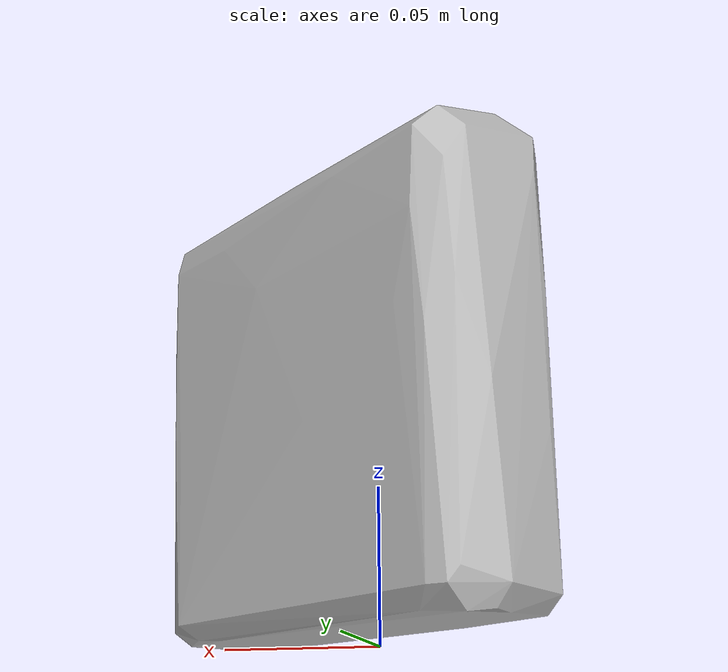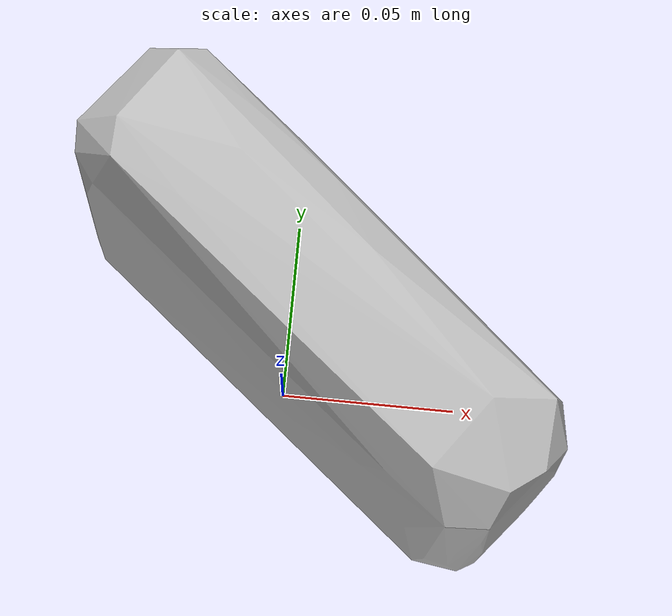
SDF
<?xml version='1.0'?>
<sdf version="1.4">
  <model name="chewy_dipps_chocolate_chip">
    <static>false</static>
    <link name="link">
      <inertial>
        <pose>0.0102431282093078 0.013296985506505432 0.07390101370462605 1.6118597756685422 -0.015415424312318066 -2.25556672559486</pose>
        <mass>0.20252997395123727</mass>
        <inertia>
          <ixx>0.0003597066609136523</ixx>
          <ixy>-1.2559994163981523e-21</ixy>
          <ixz>-8.71199564577435e-21</ixz>
          <iyy>0.00021333043867808362</iyy>
          <iyz>-4.284474137002229e-22</iyz>
          <izz>0.00018561127811246496</izz>
        </inertia>
      </inertial>
      <collision name="collision">
        <geometry>
          <mesh>
            <!-- Use a downsampled mesh for collisions -->
            <uri>model:///chewy_dipps_chocolate_chip/chewy_dipps_chocolate_chip_250_collision.obj</uri>
	        </mesh>
        </geometry>
        <surface>
      </surface>
      </collision>
      <visual name="visual">
        <geometry>
          <mesh>
            <uri>model:///chewy_dipps_chocolate_chip/optimized_tsdf_texture_mapped_mesh.obj</uri>
	        </mesh>
        </geometry>
        <material>
          <script>
            <uri>model:///chewy_dipps_chocolate_chip/chewy_dipps_chocolate_chip.material</uri>
            <name>chewy_dipps_chocolate_chip</name>
          </script>
        </material>
      </visual>
    </link>
  </model>
</sdf>
